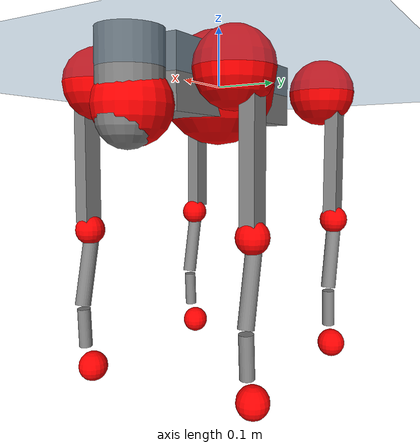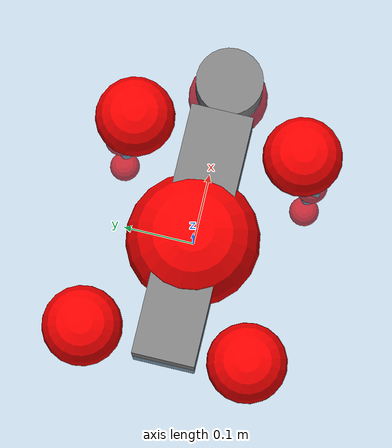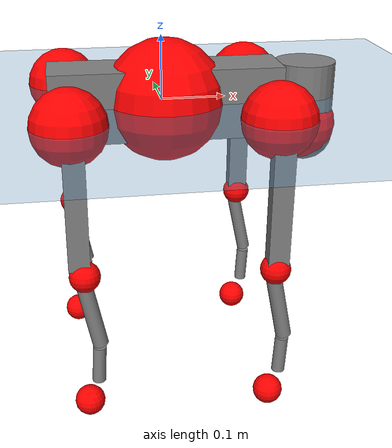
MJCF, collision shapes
<mujoco model="go2">
  <compiler angle="radian" assetdir="assets" balanceinertia="true" inertiafromgeom="false"/>

  <option timestep="0.005" density="1.2" viscosity="2e-05"/>

  <size nkey="1"/>

  <visual>
    <quality shadowsize="8192"/>
    <map shadowclip="0.5"/>
  </visual>

  <default>
    <default class="/">
      <geom contype="0" conaffinity="0" group="1" solref="-1000 -80"/>
      <site size="0.01 0.005 0.005" group="5"/>
      <general forcelimited="true" biastype="affine" gainprm="20" biasprm="0 -20 -0.5"/>
      <default class="go2">
        <joint armature="0.01" damping="0.01" frictionloss="0.2"/>
        <geom condim="1" margin="0.001"/>
        <default class="visual">
          <geom type="mesh" group="2"/>
        </default>
        <default class="collision">
          <geom group="3"/>
          <default class="foot">
            <geom size="0.022 0 0" condim="6" priority="1" friction="0.8 0.02 0.01" solimp="0.015 1 0.022"/>
          </default>
        </default>
        <default class="reward_collision_sphere">
          <geom group="5" rgba="1 0 0 1"/>
        </default>
      </default>
    </default>
  </default>

  <asset>
    <texture type="skybox" colorspace="auto" name="//unnamed_texture_0" builtin="gradient" rgb1="0.95 0.95 0.95" rgb2="0.95 0.95 0.95" width="100" height="600"/>
    <texture type="2d" colorspace="auto" name="texplane" builtin="checker" rgb1="0.345 0.575 0.748" rgb2="0.345 0.575 0.748" markrgb="1 1 1" width="512" height="512"/>
    <material name="MatPlane" class="/" texture="texplane" texuniform="true" texrepeat="2 2" specular="0.9"/>
    <material name="metal" class="/" rgba="0.9 0.95 0.95 1"/>
    <material name="black" class="/" rgba="0 0 0 1"/>
    <material name="white" class="/"/>
    <material name="gray" class="/" rgba="0.671705 0.692426 0.77427 1"/>
    <mesh name="base_0" class="/" file="base_0.obj"/>
    <mesh name="base_1" class="/" file="base_1.obj"/>
    <mesh name="base_2" class="/" file="base_2.obj"/>
    <mesh name="base_3" class="/" file="base_3.obj"/>
    <mesh name="base_4" class="/" file="base_4.obj"/>
    <mesh name="hip_0" class="/" file="hip_0.obj"/>
    <mesh name="hip_1" class="/" file="hip_1.obj"/>
    <mesh name="thigh_0" class="/" file="thigh_0.obj"/>
    <mesh name="thigh_1" class="/" file="thigh_1.obj"/>
    <mesh name="thigh_mirror_0" class="/" file="thigh_mirror_0.obj"/>
    <mesh name="thigh_mirror_1" class="/" file="thigh_mirror_1.obj"/>
    <mesh name="calf_0" class="/" file="calf_0.obj"/>
    <mesh name="calf_1" class="/" file="calf_1.obj"/>
    <mesh name="calf_mirror_0" class="/" file="calf_mirror_0.obj"/>
    <mesh name="calf_mirror_1" class="/" file="calf_mirror_1.obj"/>
    <mesh name="foot" class="/" file="foot.obj"/>
  </asset>

  <worldbody>
    <geom name="floor" class="/" size="100 100 0.125" type="plane" group="0" material="MatPlane"/>
    <light name="toplight_shadow" class="/" pos="0 0 5" dir="0.0990148 0.0990148 -0.990148" type="directional" ambient="0.04 0.04 0.04" diffuse="0.55 0.55 0.55" specular="0.12 0.12 0.12"/>
    <light name="toplight_fill" class="/" pos="0 0 5" dir="0.0990148 0.0990148 -0.990148" type="directional" castshadow="false" ambient="0.04 0.04 0.04" diffuse="0.3 0.3 0.3" specular="0.08 0.08 0.08"/>
    <body name="trunk" childclass="go2" pos="0.00555156 0.00172278 -0.00130396" quat="0.999999 -0.000886832 0.000789957 -0.00100447">
      <inertial pos="0.0227217 -0.0013671 -0.00611834" quat="-0.00529174 0.715624 -0.00556509 0.698443" mass="6.17225" diaginertia="0.030519 0.115229 0.0304767"/>
      <joint name="//unnamed_joint_0" type="free" armature="0" damping="0" frictionloss="0"/>
      <geom name="//unnamed_geom_1" class="visual" material="black" mesh="base_0"/>
      <geom name="//unnamed_geom_2" class="visual" material="black" mesh="base_1"/>
      <geom name="//unnamed_geom_3" class="visual" material="black" mesh="base_2"/>
      <geom name="//unnamed_geom_4" class="visual" material="white" mesh="base_3"/>
      <geom name="//unnamed_geom_5" class="visual" material="gray" mesh="base_4"/>
      <geom name="trunk_1" class="collision" size="0.179866 0.0447036 0.054505" type="box"/>
      <geom name="trunk_2" class="collision" size="0.0478114 0.0430302" pos="0.223074 0 0.0105694" type="cylinder"/>
      <geom name="trunk_3" class="collision" size="0.0449427" pos="0.229335 0 -0.0634164"/>
      <geom name="//unnamed_geom_9" class="reward_collision_sphere" size="0.0956228"/>
      <geom name="//unnamed_geom_10" class="reward_collision_sphere" size="0.0573737" pos="0.21916 0 -0.0475623"/>
      <site name="imu" pos="-0.0169206 0.00761187 0.0341931" size="0.00956228"/>
      <camera name="track" pos="0 -2.05806 0" quat="0.707107 0.707107 0 0" mode="trackcom"/>
      <camera name="ego_camera" pos="0.244207 0 0.0475623" quat="-0.5 -0.5 0.5 0.5"/>
      <body name="FL_hip" pos="0.152423 0.0487499 0.000806625" quat="0.999996 0.000721544 0.00133451 -0.002304">
        <inertial pos="0.00218184 0.00196616 -0.000154005" quat="0.496981 0.495204 0.51043 0.497236" mass="0.547448" diaginertia="0.000239497 0.000693711 0.000600694"/>
        <joint name="FL_hip_joint" pos="0 0 0" axis="0.999976 0.00438517 -0.00527492" range="-1.07734 1.1251" armature="0.00835379" damping="0.0162211" frictionloss="0.201321"/>
        <geom name="//unnamed_geom_11" class="visual" material="metal" mesh="hip_0"/>
        <geom name="//unnamed_geom_12" class="visual" material="gray" mesh="hip_1"/>
        <geom name="//unnamed_geom_13" class="collision" size="0.0439865 0.0191246" pos="0 0.0823223 0" quat="0.707107 0.707107 0 0" type="cylinder"/>
        <geom name="//unnamed_geom_14" class="reward_collision_sphere" size="0.0573737" pos="0 0.072032 0"/>
        <body name="FL_thigh" pos="0.000902483 0.0994239 0.00135834" quat="1 0.000207757 -0.000218344 -0.000388827">
          <inertial pos="-0.00841463 -0.0210245 -0.0389283" quat="0.831296 0.0913085 -0.0214798 0.547858" mass="0.972518" diaginertia="0.00169487 0.00687104 0.00113139"/>
          <joint name="FL_thigh_joint" pos="0 0 0" axis="-0.00122221 0.999994 0.0033174" range="-1.50646 3.43938" armature="0.00831384" damping="0.0341639" frictionloss="0.194876"/>
          <geom name="//unnamed_geom_15" class="visual" material="metal" mesh="thigh_0"/>
          <geom name="//unnamed_geom_16" class="visual" material="gray" mesh="thigh_1"/>
          <geom name="//unnamed_geom_17" class="collision" size="0.101838 0.0117138 0.0162559" pos="0 0 -0.112564" quat="0.707107 0 0.707107 0" type="box"/>
          <body name="FL_calf" pos="0.000797309 0.00110492 -0.227065" quat="1 -0.000249474 -0.000202527 -0.000428734">
            <inertial pos="0.00436829 -0.000526946 -0.147211" quat="0.707864 0.00273973 -0.0248586 0.705906" mass="0.217307" diaginertia="0.000429638 0.0017011 7.15154e-05"/>
            <joint name="FL_calf_joint" pos="0 0 0" axis="0.00244506 0.999997 -0.00100082" range="-2.76877 -0.767605" armature="0.00961888" damping="0.00316869" frictionloss="0.169788"/>
            <geom name="//unnamed_geom_18" class="visual" material="gray" mesh="calf_0"/>
            <geom name="//unnamed_geom_19" class="visual" material="black" mesh="calf_1"/>
            <geom name="FL_calf0" class="collision" size="0.0114747 0.0573737" pos="0.00626172 0 -0.0634164" quat="0.994493 0 -0.104807 0" type="cylinder"/>
            <geom name="//unnamed_geom_21" class="collision" size="0.0105185 0.0310774" pos="0.0156543 0 -0.156427" quat="0.999688 0 0.0249974 0" type="cylinder"/>
            <geom name="//unnamed_geom_22" class="visual" pos="0 0 -0.225128" quat="1 0 0 0" material="black" mesh="foot"/>
            <geom name="FL_foot" class="foot" size="0.0237375" pos="-0.00156543 0 -0.225128"/>
            <geom name="//unnamed_geom_24" class="reward_collision_sphere" size="0.0239057"/>
            <geom name="//unnamed_geom_25" class="reward_collision_sphere" size="0.0239057" pos="-0.00156543 0 -0.225128"/>
            <site name="FL_foot" class="foot" pos="-0.00156543 0 -0.225128" size="0.00956228"/>
          </body>
        </body>
      </body>
      <body name="FR_hip" pos="0.151598 -0.0519575 -0.00257645" quat="1 -0.000114424 -0.000372014 0.000321045">
        <inertial pos="-0.0071555 0.000241272 -0.000162697" quat="0.502509 0.504119 0.499745 0.493563" mass="0.526071" diaginertia="0.000246975 0.000653866 0.000627484"/>
        <joint name="FR_hip_joint" pos="0 0 0" axis="0.999977 -0.00195462 -0.00654929" stiffness="0.0285025" range="-1.05463 1.04264" armature="0.0123326" damping="0" frictionloss="0.136357"/>
        <geom name="//unnamed_geom_26" class="visual" pos="0 -2.4315e-10 -1.04292e-08" quat="4.63268e-05 1 0 0" material="metal" mesh="hip_0"/>
        <geom name="//unnamed_geom_27" class="visual" pos="0 -3.94175e-10 2.57954e-08" quat="4.63268e-05 1 0 0" material="gray" mesh="hip_1"/>
        <geom name="//unnamed_geom_28" class="collision" size="0.0439865 0.0191246" pos="0 -0.0823223 0" quat="0.707107 0.707107 0 0" type="cylinder"/>
        <geom name="//unnamed_geom_29" class="reward_collision_sphere" size="0.0573737" pos="0 -0.072032 0"/>
        <body name="FR_thigh" pos="0.000741058 -0.0998757 -0.00458378" quat="0.999997 0.00145179 0.00143949 -0.00144522">
          <inertial pos="-0.000896464 0.0291962 -0.0365785" quat="0.545659 -0.0277692 0.0808928 0.833631" mass="1.06889" diaginertia="0.00170592 0.00653526 0.00117983"/>
          <joint name="FR_thigh_joint" pos="0 0 0" axis="0.011031 -0.999921 0.00602074" range="-3.53013 1.54088" armature="0.0093771" damping="0" frictionloss="0.200979"/>
          <geom name="//unnamed_geom_30" class="visual" material="metal" mesh="thigh_mirror_0"/>
          <geom name="//unnamed_geom_31" class="visual" material="gray" mesh="thigh_mirror_1"/>
          <geom name="//unnamed_geom_32" class="collision" size="0.101838 0.0117138 0.0162559" pos="0 0 -0.112564" quat="0.707107 0 0.707107 0" type="box"/>
          <body name="FR_calf" pos="-0.00113879 0.00209322 -0.226569" quat="1 -4.14634e-05 4.92887e-05 4.69834e-05">
            <inertial pos="0.00501191 0.00140093 -0.151701" quat="0.700375 -0.00703748 -0.00857787 0.713689" mass="0.207739" diaginertia="0.000400244 0.00165936 6.81256e-05"/>
            <joint name="FR_calf_joint" pos="0 0 0" axis="0.00113707 -0.999824 -0.0186998" stiffness="5.05611e-05" range="0.821714 2.69144" armature="0.0102998" damping="0.00592923" frictionloss="0.212215"/>
            <geom name="//unnamed_geom_33" class="visual" material="gray" mesh="calf_mirror_0"/>
            <geom name="//unnamed_geom_34" class="visual" material="black" mesh="calf_mirror_1"/>
            <geom name="FR_calf0" class="collision" size="0.012431 0.0573737" pos="0.00782715 0 -0.0634164" quat="0.995004 0 -0.0998334 0" type="cylinder"/>
            <geom name="//unnamed_geom_36" class="collision" size="0.0105185 0.0310774" pos="0.0156543 0 -0.156427" quat="0.999688 0 0.0249974 0" type="cylinder"/>
            <geom name="//unnamed_geom_37" class="visual" pos="0 0 -0.225128" quat="1 0 0 0" material="black" mesh="foot"/>
            <geom name="FR_foot" class="foot" size="0.0210425" pos="-0.00156543 0 -0.225128"/>
            <geom name="//unnamed_geom_39" class="reward_collision_sphere" size="0.0239057"/>
            <geom name="//unnamed_geom_40" class="reward_collision_sphere" size="0.0239057" pos="-0.00156543 0 -0.225128"/>
            <site name="FR_foot" class="foot" pos="-0.00156543 0 -0.225128" size="0.00956228"/>
          </body>
        </body>
      </body>
      <body name="RL_hip" pos="-0.154412 0.0511741 -0.000242477" quat="0.999993 -0.00286196 0.00221613 0.000530786">
        <inertial pos="-0.00114149 0.000314852 0.00210004" quat="0.506352 0.497683 0.496549 0.499358" mass="0.618991" diaginertia="0.00026456 0.000679428 0.000625063"/>
        <joint name="RL_hip_joint" pos="0 0 0" axis="-0.999937 0.00551174 0.00977168" range="-1.09743 1.08447" armature="0.00969981" damping="0.00521048" frictionloss="0.204243"/>
        <geom name="//unnamed_geom_41" class="visual" pos="2.38893e-09 0 4.68286e-07" quat="4.63268e-05 0 1 0" material="metal" mesh="hip_0"/>
        <geom name="//unnamed_geom_42" class="visual" pos="3.87275e-09 0 4.15303e-07" quat="4.63268e-05 0 1 0" material="gray" mesh="hip_1"/>
        <geom name="//unnamed_geom_43" class="collision" size="0.0439865 0.0191246" pos="0 0.0823223 0" quat="0.707107 0.707107 0 0" type="cylinder"/>
        <geom name="//unnamed_geom_44" class="reward_collision_sphere" size="0.0573737" pos="0 0.072032 0"/>
        <body name="RL_thigh" pos="0.00514213 0.0993751 -0.00197108" quat="0.999997 -0.00179889 -0.00189116 -5.40394e-05">
          <inertial pos="-0.00311122 -0.0249898 -0.0369982" quat="0.834329 0.0775275 -0.00276425 0.545781" mass="1.05054" diaginertia="0.00179141 0.00696699 0.00118363"/>
          <joint name="RL_thigh_joint" pos="0 0 0" axis="0.000177697 0.999991 0.00412455" stiffness="0.0141781" range="-0.564193 4.4991" armature="0.010138" damping="0.0349267" frictionloss="0.175857"/>
          <geom name="//unnamed_geom_45" class="visual" material="metal" mesh="thigh_0"/>
          <geom name="//unnamed_geom_46" class="visual" material="gray" mesh="thigh_1"/>
          <geom name="//unnamed_geom_47" class="collision" size="0.101838 0.0117138 0.0162559" pos="0 0 -0.112564" quat="0.707107 0 0.707107 0" type="box"/>
          <body name="RL_calf" pos="0.000532022 0.00247804 -0.22418" quat="1 1.16456e-05 5.52365e-05 0.000221252">
            <inertial pos="0.00455746 -0.000802 -0.149849" quat="0.712334 0.00328858 -0.00304575 0.701826" mass="0.209259" diaginertia="0.000438903 0.00169668 6.84929e-05"/>
            <joint name="RL_calf_joint" pos="0 0 0" axis="-0.00297343 0.999938 -0.010739" range="-2.76769 -0.841295" armature="0.00933676" damping="0.0316823" frictionloss="0.186286"/>
            <geom name="//unnamed_geom_48" class="visual" material="gray" mesh="calf_0"/>
            <geom name="//unnamed_geom_49" class="visual" material="black" mesh="calf_1"/>
            <geom name="RL_calf0" class="collision" size="0.012431 0.0573737" pos="0.00782715 0 -0.0634164" quat="0.995004 0 -0.0998334 0" type="cylinder"/>
            <geom name="//unnamed_geom_51" class="collision" size="0.0105185 0.0310774" pos="0.0156543 0 -0.156427" quat="0.999688 0 0.0249974 0" type="cylinder"/>
            <geom name="//unnamed_geom_52" class="visual" pos="0 0 -0.225128" quat="1 0 0 0" material="black" mesh="foot"/>
            <geom name="RL_foot" class="foot" size="0.0195332" pos="-0.00156543 0 -0.225128"/>
            <geom name="//unnamed_geom_54" class="reward_collision_sphere" size="0.0239057"/>
            <geom name="//unnamed_geom_55" class="reward_collision_sphere" size="0.0239057" pos="-0.00156543 0 -0.225128"/>
            <site name="RL_foot" class="foot" pos="-0.00156543 0 -0.225128" size="0.00956228"/>
          </body>
        </body>
      </body>
      <body name="RR_hip" pos="-0.152138 -0.0421582 -0.00241185" quat="1 -0.000390917 -0.000331825 -0.000577783">
        <inertial pos="0.00477611 -0.00498237 -0.000292746" quat="0.493447 0.481379 0.51265 0.511834" mass="0.592795" diaginertia="0.000257469 0.000677144 0.000621227"/>
        <joint name="RR_hip_joint" pos="0 0 0" axis="-0.999901 -0.00252494 -0.0138084" range="-0.996769 1.03504" armature="0.00675407" damping="0" frictionloss="0.228949"/>
        <geom name="//unnamed_geom_56" class="visual" pos="-2.38041e-09 -2.4315e-10 4.78715e-07" quat="2.14617e-09 4.63268e-05 4.63268e-05 -1" material="metal" mesh="hip_0"/>
        <geom name="//unnamed_geom_57" class="visual" pos="-3.89384e-09 -3.94175e-10 3.89508e-07" quat="2.14617e-09 4.63268e-05 4.63268e-05 -1" material="gray" mesh="hip_1"/>
        <geom name="//unnamed_geom_58" class="collision" size="0.0439865 0.0191246" pos="0 -0.0823223 0" quat="0.707107 0.707107 0 0" type="cylinder"/>
        <geom name="//unnamed_geom_59" class="reward_collision_sphere" size="0.0573737" pos="0 -0.072032 0"/>
        <body name="RR_thigh" pos="0.00314411 -0.0999269 0.00374001" quat="1 -3.69261e-05 -5.80044e-06 -2.43167e-05">
          <inertial pos="-0.00246711 0.0225824 -0.033508" quat="0.552577 -0.0178567 0.0869396 0.828723" mass="0.982696" diaginertia="0.0016927 0.00666373 0.0012032"/>
          <joint name="RR_thigh_joint" pos="0 0 0" axis="-0.0066345 -0.999458 0.0322466" stiffness="0.00607443" range="-4.44536 0.509349" armature="0.00948593" damping="0.00146526" frictionloss="0.170562"/>
          <geom name="//unnamed_geom_60" class="visual" material="metal" mesh="thigh_mirror_0"/>
          <geom name="//unnamed_geom_61" class="visual" material="gray" mesh="thigh_mirror_1"/>
          <geom name="//unnamed_geom_62" class="collision" size="0.101838 0.0117138 0.0162559" pos="0 0 -0.112564" quat="0.707107 0 0.707107 0" type="box"/>
          <body name="RR_calf" pos="0.00736317 -0.00168917 -0.227677" quat="0.999999 0.000844712 0.000617726 -0.000520953">
            <inertial pos="-0.00190221 0.00176444 -0.149626" quat="0.703477 0.000942397 0.00515101 0.710699" mass="0.208444" diaginertia="0.000469259 0.00185913 7.39969e-05"/>
            <joint name="RR_calf_joint" pos="0 0 0" axis="0.00619706 -0.999961 0.0062329" range="0.797795 2.58122" armature="0.0109743" damping="0.0213813" frictionloss="0.210971"/>
            <geom name="//unnamed_geom_63" class="visual" material="gray" mesh="calf_mirror_0"/>
            <geom name="//unnamed_geom_64" class="visual" material="black" mesh="calf_mirror_1"/>
            <geom name="RR_calf0" class="collision" size="0.012431 0.0573737" pos="0.00782715 0 -0.0634164" quat="0.995004 0 -0.0998334 0" type="cylinder"/>
            <geom name="//unnamed_geom_66" class="collision" size="0.0105185 0.0310774" pos="0.0156543 0 -0.156427" quat="0.999688 0 0.0249974 0" type="cylinder"/>
            <geom name="//unnamed_geom_67" class="visual" pos="0 0 -0.225128" quat="1 0 0 0" material="black" mesh="foot"/>
            <geom name="RR_foot" class="foot" size="0.0182041" pos="-0.00156543 0 -0.225128"/>
            <geom name="//unnamed_geom_69" class="reward_collision_sphere" size="0.0239057"/>
            <geom name="//unnamed_geom_70" class="reward_collision_sphere" size="0.0239057" pos="-0.00156543 0 -0.225128"/>
            <site name="RR_foot" class="foot" pos="-0.00156543 0 -0.225128" size="0.00956228"/>
          </body>
        </body>
      </body>
    </body>
  </worldbody>

  <contact>
    <pair class="/" geom1="floor" geom2="FL_foot" name="//unnamed_contact_0"/>
    <pair class="/" geom1="floor" geom2="FR_foot" name="//unnamed_contact_1"/>
    <pair class="/" geom1="floor" geom2="RL_foot" name="//unnamed_contact_2"/>
    <pair class="/" geom1="floor" geom2="RR_foot" name="//unnamed_contact_3"/>
  </contact>

  <actuator>
    <general name="FL_hip" class="/" joint="FL_hip_joint" forcerange="-21.2371 21.2371" gainprm="19.1787" biasprm="0 -19.1787 -0.478003"/>
    <general name="FL_thigh" class="/" joint="FL_thigh_joint" forcerange="-22.5659 22.5659" gainprm="19.1787" biasprm="0 -19.1787 -0.478003"/>
    <general name="FL_calf" class="/" joint="FL_calf_joint" forcerange="-42.3094 42.3094" gainprm="19.1787" biasprm="0 -19.1787 -0.478003"/>
    <general name="FR_hip" class="/" joint="FR_hip_joint" forcerange="-17.094 17.094" gainprm="19.1787" biasprm="0 -19.1787 -0.478003"/>
    <general name="FR_thigh" class="/" joint="FR_thigh_joint" forcerange="-23.1141 23.1141" gainprm="19.1787" biasprm="0 -19.1787 -0.478003"/>
    <general name="FR_calf" class="/" joint="FR_calf_joint" forcerange="-47.1139 47.1139" gainprm="19.1787" biasprm="0 -19.1787 -0.478003"/>
    <general name="RL_hip" class="/" joint="RL_hip_joint" forcerange="-20.9966 20.9966" gainprm="19.1787" biasprm="0 -19.1787 -0.478003"/>
    <general name="RL_thigh" class="/" joint="RL_thigh_joint" forcerange="-21.1642 21.1642" gainprm="19.1787" biasprm="0 -19.1787 -0.478003"/>
    <general name="RL_calf" class="/" joint="RL_calf_joint" forcerange="-47.5355 47.5355" gainprm="19.1787" biasprm="0 -19.1787 -0.478003"/>
    <general name="RR_hip" class="/" joint="RR_hip_joint" forcerange="-24.5999 24.5999" gainprm="19.1787" biasprm="0 -19.1787 -0.478003"/>
    <general name="RR_thigh" class="/" joint="RR_thigh_joint" forcerange="-21.0922 21.0922" gainprm="19.1787" biasprm="0 -19.1787 -0.478003"/>
    <general name="RR_calf" class="/" joint="RR_calf_joint" forcerange="-35.8001 35.8001" gainprm="19.1787" biasprm="0 -19.1787 -0.478003"/>
  </actuator>

  <sensor>
    <gyro site="imu" name="imu_angular_velocity"/>
    <velocimeter site="imu" name="imu_linear_velocity"/>
    <framelinvel objtype="site" objname="FL_foot" name="FL_foot_global_linear_velocity"/>
    <framelinvel objtype="site" objname="FR_foot" name="FR_foot_global_linear_velocity"/>
    <framelinvel objtype="site" objname="RL_foot" name="RL_foot_global_linear_velocity"/>
    <framelinvel objtype="site" objname="RR_foot" name="RR_foot_global_linear_velocity"/>
  </sensor>

  <keyframe>
    <key name="home" qpos="0 0 0.325 1 0 0 0 0.1 0.8 -1.5 -0.1 -0.8 1.5 -0.1 0.8 -1.5 0.1 -0.8 1.5"/>
  </keyframe>
</mujoco>
